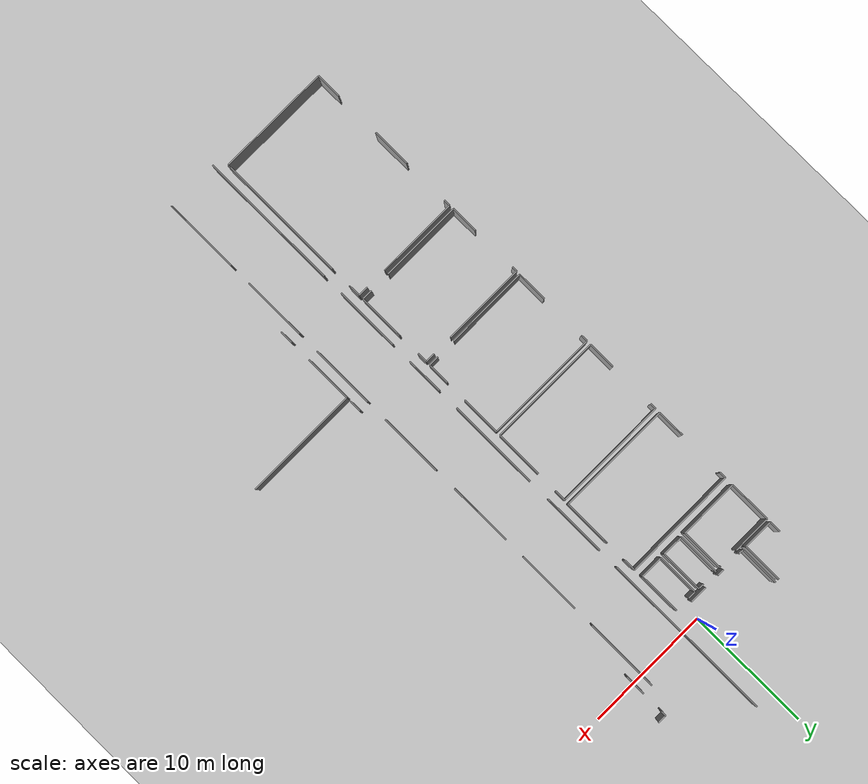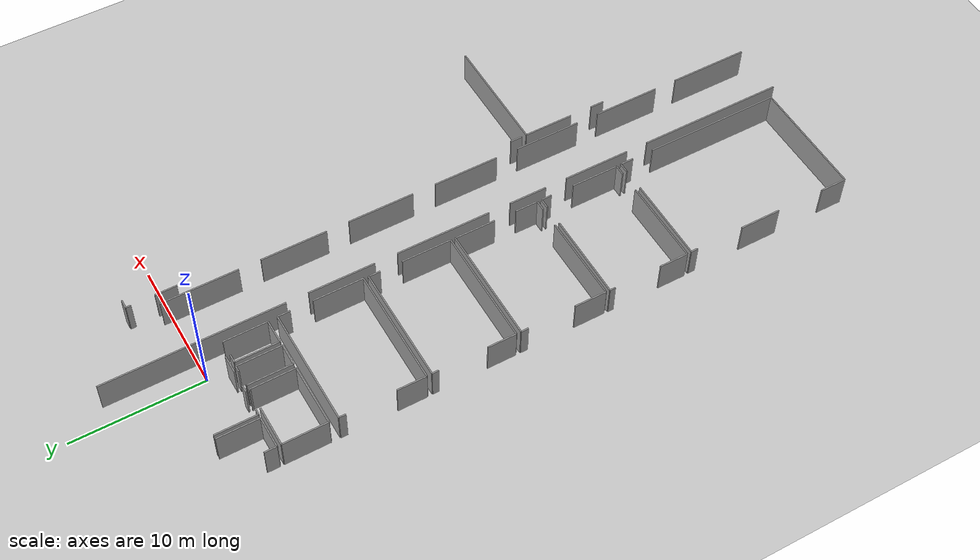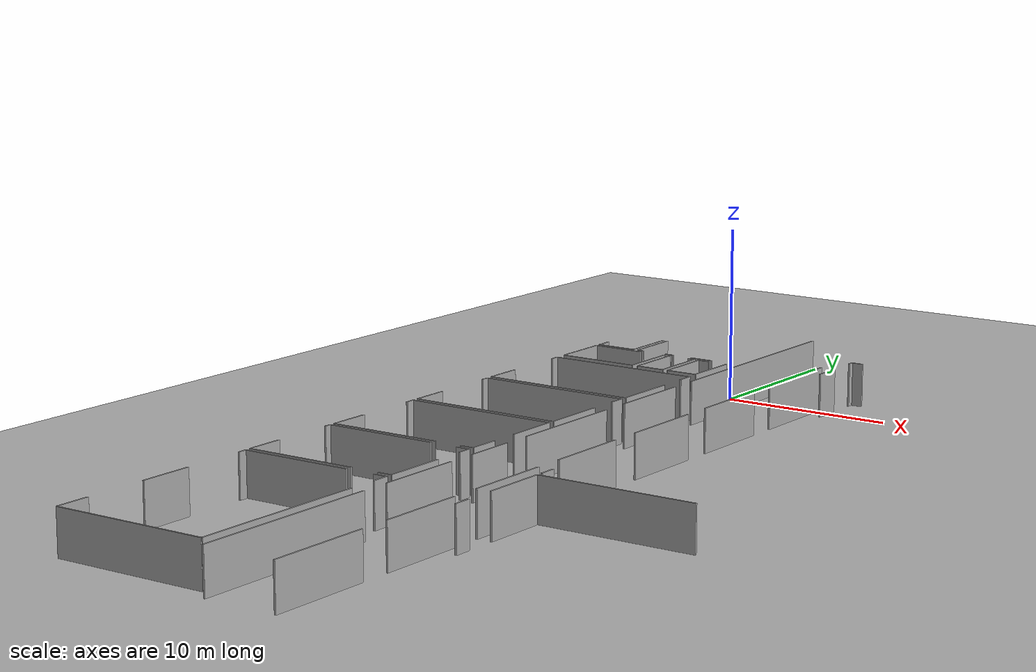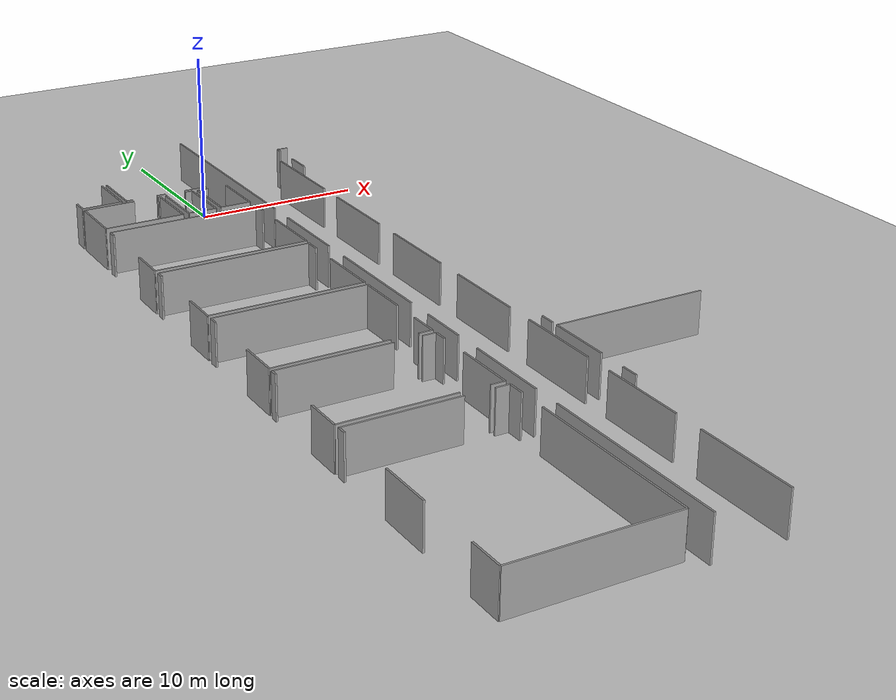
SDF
<sdf version="1.6">
 <world name="default">
  <model name="ground_plane">
   <static>1</static>
   <link name="link">
    <collision name="collision">
     <geometry><plane><normal>0 0 1</normal><size>100 100</size></plane></geometry>
     <surface><friction><ode><mu>100</mu><mu2>50</mu2></ode></friction></surface>
    </collision>
    <visual name="visual">
     <cast_shadows>0</cast_shadows>
     <geometry><plane><normal>0 0 1</normal><size>100 100</size></plane></geometry>
     <material>
      <script><uri>file://media/materials/scripts/gazebo.material</uri><name>Gazebo/Grey</name></script>
     </material>
    </visual>
   </link>
  </model>
  <model name="0510035740_A_40_1_103">
   <static>1</static>
   <link name="Wall_242">
    <collision name="Wall_242_Collision">
     <geometry><box><size>0.921048457199 0.1 2.5</size></box></geometry>
     <pose>0.4605242286 0 1.25 0 0 0</pose>
    </collision>
    <visual name="Wall_242_Visual">
     <pose>0.4605242286 0 1.25 0 0 0</pose>
     <geometry><box><size>0.921048457199 0.1 2.5</size></box></geometry>
     <material>
      <script><uri>file://media/materials/scripts/gazebo.material</uri><name>Gazebo/Grey</name></script>
      <ambient>1 1 1 1</ambient>
     </material>
    </visual>
    <pose>85.6668972037 -51.0680634252 0 0 0 1.57079632679</pose>
   </link>
   <link name="Wall_246">
    <collision name="Wall_246_Collision">
     <geometry><box><size>3.20729935344 0.1 2.5</size></box></geometry>
     <pose>1.60364967672 0 1.25 0 0 0</pose>
    </collision>
    <visual name="Wall_246_Visual">
     <pose>1.60364967672 0 1.25 0 0 0</pose>
     <geometry><box><size>3.20729935344 0.1 2.5</size></box></geometry>
     <material>
      <script><uri>file://media/materials/scripts/gazebo.material</uri><name>Gazebo/Grey</name></script>
      <ambient>1 1 1 1</ambient>
     </material>
    </visual>
    <pose>88.0919779446 -47.8607640717 0 0 0 -1.57079632679</pose>
   </link>
   <link name="Wall_247">
    <collision name="Wall_247_Collision">
     <geometry><box><size>2.42508074085 0.1 2.5</size></box></geometry>
     <pose>1.21254037042 0 1.25 0 0 0</pose>
    </collision>
    <visual name="Wall_247_Visual">
     <pose>1.21254037042 0 1.25 0 0 0</pose>
     <geometry><box><size>2.42508074085 0.1 2.5</size></box></geometry>
     <material>
      <script><uri>file://media/materials/scripts/gazebo.material</uri><name>Gazebo/Grey</name></script>
      <ambient>1 1 1 1</ambient>
     </material>
    </visual>
    <pose>88.0919779446 -51.0680634252 0 0 0 3.14159265359</pose>
   </link>
   <link name="Wall_248">
    <collision name="Wall_248_Collision">
     <geometry><box><size>3.18471095093 0.1 2.5</size></box></geometry>
     <pose>1.59235547547 0 1.25 0 0 0</pose>
    </collision>
    <visual name="Wall_248_Visual">
     <pose>1.59235547547 0 1.25 0 0 0</pose>
     <geometry><box><size>3.18471095093 0.1 2.5</size></box></geometry>
     <material>
      <script><uri>file://media/materials/scripts/gazebo.material</uri><name>Gazebo/Grey</name></script>
      <ambient>1 1 1 1</ambient>
     </material>
    </visual>
    <pose>88.3914646295 -51.0604493569 0 0 0 1.57079632679</pose>
   </link>
   <link name="Wall_255">
    <collision name="Wall_255_Collision">
     <geometry><box><size>1.39286688705 0.1 2.5</size></box></geometry>
     <pose>0.696433443526 0 1.25 0 0 0</pose>
    </collision>
    <visual name="Wall_255_Visual">
     <pose>0.696433443526 0 1.25 0 0 0</pose>
     <geometry><box><size>1.39286688705 0.1 2.5</size></box></geometry>
     <material>
      <script><uri>file://media/materials/scripts/gazebo.material</uri><name>Gazebo/Grey</name></script>
      <ambient>1 1 1 1</ambient>
     </material>
    </visual>
    <pose>93.4908599456 -51.0827839572 0 0 0 3.14159265359</pose>
   </link>
   <link name="Wall_256">
    <collision name="Wall_256_Collision">
     <geometry><box><size>0.555065576163 0.1 2.5</size></box></geometry>
     <pose>0.277532788081 0 1.25 0 0 0</pose>
    </collision>
    <visual name="Wall_256_Visual">
     <pose>0.277532788081 0 1.25 0 0 0</pose>
     <geometry><box><size>0.555065576163 0.1 2.5</size></box></geometry>
     <material>
      <script><uri>file://media/materials/scripts/gazebo.material</uri><name>Gazebo/Grey</name></script>
      <ambient>1 1 1 1</ambient>
     </material>
    </visual>
    <pose>90.8782193232 -51.0827839572 0 0 0 3.14159265359</pose>
   </link>
   <link name="Wall_257">
    <collision name="Wall_257_Collision">
     <geometry><box><size>0.391239726732 0.1 2.5</size></box></geometry>
     <pose>0.195619863366 0 1.25 0 0 0</pose>
    </collision>
    <visual name="Wall_257_Visual">
     <pose>0.195619863366 0 1.25 0 0 0</pose>
     <geometry><box><size>0.391239726732 0.1 2.5</size></box></geometry>
     <material>
      <script><uri>file://media/materials/scripts/gazebo.material</uri><name>Gazebo/Grey</name></script>
      <ambient>1 1 1 1</ambient>
     </material>
    </visual>
    <pose>88.7820663312 -51.0827839572 0 0 0 3.08447486225</pose>
   </link>
   <link name="Wall_258">
    <collision name="Wall_258_Collision">
     <geometry><box><size>3.3816615166 0.1 2.5</size></box></geometry>
     <pose>1.6908307583 0 1.25 0 0 0</pose>
    </collision>
    <visual name="Wall_258_Visual">
     <pose>1.6908307583 0 1.25 0 0 0</pose>
     <geometry><box><size>3.3816615166 0.1 2.5</size></box></geometry>
     <material>
      <script><uri>file://media/materials/scripts/gazebo.material</uri><name>Gazebo/Grey</name></script>
      <ambient>1 1 1 1</ambient>
     </material>
    </visual>
    <pose>85.6668972037 -54.7527648585 0 0 0 1.57079632679</pose>
   </link>
   <link name="Wall_259">
    <collision name="Wall_259_Collision">
     <geometry><box><size>3.09156551588 0.1 2.5</size></box></geometry>
     <pose>1.54578275794 0 1.25 0 0 0</pose>
    </collision>
    <visual name="Wall_259_Visual">
     <pose>1.54578275794 0 1.25 0 0 0</pose>
     <geometry><box><size>3.09156551588 0.1 2.5</size></box></geometry>
     <material>
      <script><uri>file://media/materials/scripts/gazebo.material</uri><name>Gazebo/Grey</name></script>
      <ambient>1 1 1 1</ambient>
     </material>
    </visual>
    <pose>85.6668972037 -51.3711033419 0 0 0 0.0</pose>
   </link>
   <link name="Wall_260">
    <collision name="Wall_260_Collision">
     <geometry><box><size>0.115987639829 0.1 2.5</size></box></geometry>
     <pose>0.0579938199146 0 1.25 0 0 0</pose>
    </collision>
    <visual name="Wall_260_Visual">
     <pose>0.0579938199146 0 1.25 0 0 0</pose>
     <geometry><box><size>0.115987639829 0.1 2.5</size></box></geometry>
     <material>
      <script><uri>file://media/materials/scripts/gazebo.material</uri><name>Gazebo/Grey</name></script>
      <ambient>1 1 1 1</ambient>
     </material>
    </visual>
    <pose>90.2985349264 -51.3711033419 0 0 0 0.0</pose>
   </link>
   <link name="Wall_261">
    <collision name="Wall_261_Collision">
     <geometry><box><size>3.37785448247 0.1 2.5</size></box></geometry>
     <pose>1.68892724123 0 1.25 0 0 0</pose>
    </collision>
    <visual name="Wall_261_Visual">
     <pose>1.68892724123 0 1.25 0 0 0</pose>
     <geometry><box><size>3.37785448247 0.1 2.5</size></box></geometry>
     <material>
      <script><uri>file://media/materials/scripts/gazebo.material</uri><name>Gazebo/Grey</name></script>
      <ambient>1 1 1 1</ambient>
     </material>
    </visual>
    <pose>90.4145225662 -51.3711033419 0 0 0 -1.57079632679</pose>
   </link>
   <link name="Wall_262">
    <collision name="Wall_262_Collision">
     <geometry><box><size>4.74762688886 0.1 2.5</size></box></geometry>
     <pose>2.37381344443 0 1.25 0 0 0</pose>
    </collision>
    <visual name="Wall_262_Visual">
     <pose>2.37381344443 0 1.25 0 0 0</pose>
     <geometry><box><size>4.74762688886 0.1 2.5</size></box></geometry>
     <material>
      <script><uri>file://media/materials/scripts/gazebo.material</uri><name>Gazebo/Grey</name></script>
      <ambient>1 1 1 1</ambient>
     </material>
    </visual>
    <pose>90.4145225662 -54.7489578244 0 0 0 -3.14079077201</pose>
   </link>
   <link name="Wall_263">
    <collision name="Wall_263_Collision">
     <geometry><box><size>3.38445334162 0.1 2.5</size></box></geometry>
     <pose>1.69222667081 0 1.25 0 0 0</pose>
    </collision>
    <visual name="Wall_263_Visual">
     <pose>1.69222667081 0 1.25 0 0 0</pose>
     <geometry><box><size>3.38445334162 0.1 2.5</size></box></geometry>
     <material>
      <script><uri>file://media/materials/scripts/gazebo.material</uri><name>Gazebo/Grey</name></script>
      <ambient>1 1 1 1</ambient>
     </material>
    </visual>
    <pose>90.7914189451 -54.7253542128 0 0 0 1.57079632679</pose>
   </link>
   <link name="Wall_264">
    <collision name="Wall_264_Collision">
     <geometry><box><size>0.0756330780505 0.1 2.5</size></box></geometry>
     <pose>0.0378165390253 0 1.25 0 0 0</pose>
    </collision>
    <visual name="Wall_264_Visual">
     <pose>0.0378165390253 0 1.25 0 0 0</pose>
     <geometry><box><size>0.0756330780505 0.1 2.5</size></box></geometry>
     <material>
      <script><uri>file://media/materials/scripts/gazebo.material</uri><name>Gazebo/Grey</name></script>
      <ambient>1 1 1 1</ambient>
     </material>
    </visual>
    <pose>90.7914189451 -51.3409008712 0 0 0 0.0</pose>
   </link>
   <link name="Wall_265">
    <collision name="Wall_265_Collision">
     <geometry><box><size>0.449737631898 0.1 2.5</size></box></geometry>
     <pose>0.224868815949 0 1.25 0 0 0</pose>
    </collision>
    <visual name="Wall_265_Visual">
     <pose>0.224868815949 0 1.25 0 0 0</pose>
     <geometry><box><size>0.449737631898 0.1 2.5</size></box></geometry>
     <material>
      <script><uri>file://media/materials/scripts/gazebo.material</uri><name>Gazebo/Grey</name></script>
      <ambient>1 1 1 1</ambient>
     </material>
    </visual>
    <pose>92.0299740487 -51.3409008712 0 0 0 0.0</pose>
   </link>
   <link name="Wall_266">
    <collision name="Wall_266_Collision">
     <geometry><box><size>3.41668623059 0.1 2.5</size></box></geometry>
     <pose>1.7083431153 0 1.25 0 0 0</pose>
    </collision>
    <visual name="Wall_266_Visual">
     <pose>1.7083431153 0 1.25 0 0 0</pose>
     <geometry><box><size>3.41668623059 0.1 2.5</size></box></geometry>
     <material>
      <script><uri>file://media/materials/scripts/gazebo.material</uri><name>Gazebo/Grey</name></script>
      <ambient>1 1 1 1</ambient>
     </material>
    </visual>
    <pose>92.4797116806 -51.3409008712 0 0 0 -1.57079632679</pose>
   </link>
   <link name="Wall_267">
    <collision name="Wall_267_Collision">
     <geometry><box><size>1.68860040271 0.1 2.5</size></box></geometry>
     <pose>0.844300201354 0 1.25 0 0 0</pose>
    </collision>
    <visual name="Wall_267_Visual">
     <pose>0.844300201354 0 1.25 0 0 0</pose>
     <geometry><box><size>1.68860040271 0.1 2.5</size></box></geometry>
     <material>
      <script><uri>file://media/materials/scripts/gazebo.material</uri><name>Gazebo/Grey</name></script>
      <ambient>1 1 1 1</ambient>
     </material>
    </visual>
    <pose>92.4797116806 -54.7575871018 0 0 0 3.12250297038</pose>
   </link>
   <link name="Wall_268">
    <collision name="Wall_268_Collision">
     <geometry><box><size>3.32988585243 0.1 2.5</size></box></geometry>
     <pose>1.66494292621 0 1.25 0 0 0</pose>
    </collision>
    <visual name="Wall_268_Visual">
     <pose>1.66494292621 0 1.25 0 0 0</pose>
     <geometry><box><size>3.32988585243 0.1 2.5</size></box></geometry>
     <material>
      <script><uri>file://media/materials/scripts/gazebo.material</uri><name>Gazebo/Grey</name></script>
      <ambient>1 1 1 1</ambient>
     </material>
    </visual>
    <pose>92.8208219387 -54.7304302583 0 0 0 1.57079632679</pose>
   </link>
   <link name="Wall_269">
    <collision name="Wall_269_Collision">
     <geometry><box><size>0.648972418038 0.1 2.5</size></box></geometry>
     <pose>0.324486209019 0 1.25 0 0 0</pose>
    </collision>
    <visual name="Wall_269_Visual">
     <pose>0.324486209019 0 1.25 0 0 0</pose>
     <geometry><box><size>0.648972418038 0.1 2.5</size></box></geometry>
     <material>
      <script><uri>file://media/materials/scripts/gazebo.material</uri><name>Gazebo/Grey</name></script>
      <ambient>1 1 1 1</ambient>
     </material>
    </visual>
    <pose>92.8208219387 -51.4005444059 0 0 0 0.0</pose>
   </link>
   <link name="Wall_270">
    <collision name="Wall_270_Collision">
     <geometry><box><size>3.3270940274 0.1 2.5</size></box></geometry>
     <pose>1.6635470137 0 1.25 0 0 0</pose>
    </collision>
    <visual name="Wall_270_Visual">
     <pose>1.6635470137 0 1.25 0 0 0</pose>
     <geometry><box><size>3.3270940274 0.1 2.5</size></box></geometry>
     <material>
      <script><uri>file://media/materials/scripts/gazebo.material</uri><name>Gazebo/Grey</name></script>
      <ambient>1 1 1 1</ambient>
     </material>
    </visual>
    <pose>94.6664720849 -51.4005444059 0 0 0 -1.57079632679</pose>
   </link>
   <link name="Wall_271">
    <collision name="Wall_271_Collision">
     <geometry><box><size>1.84565225778 0.1 2.5</size></box></geometry>
     <pose>0.922826128891 0 1.25 0 0 0</pose>
    </collision>
    <visual name="Wall_271_Visual">
     <pose>0.922826128891 0 1.25 0 0 0</pose>
     <geometry><box><size>1.84565225778 0.1 2.5</size></box></geometry>
     <material>
      <script><uri>file://media/materials/scripts/gazebo.material</uri><name>Gazebo/Grey</name></script>
      <ambient>1 1 1 1</ambient>
     </material>
    </visual>
    <pose>94.6664720849 -54.7276384333 0 0 0 -3.14008000348</pose>
   </link>
   <link name="Wall_272">
    <collision name="Wall_272_Collision">
     <geometry><box><size>1.63118722359 0.1 2.5</size></box></geometry>
     <pose>0.815593611797 0 1.25 0 0 0</pose>
    </collision>
    <visual name="Wall_272_Visual">
     <pose>0.815593611797 0 1.25 0 0 0</pose>
     <geometry><box><size>1.63118722359 0.1 2.5</size></box></geometry>
     <material>
      <script><uri>file://media/materials/scripts/gazebo.material</uri><name>Gazebo/Grey</name></script>
      <ambient>1 1 1 1</ambient>
     </material>
    </visual>
    <pose>100.381084116 -50.6028438545 0 0 0 1.57079632679</pose>
   </link>
   <link name="Wall_273">
    <collision name="Wall_273_Collision">
     <geometry><box><size>0.38374904031 0.1 2.5</size></box></geometry>
     <pose>0.191874520155 0 1.25 0 0 0</pose>
    </collision>
    <visual name="Wall_273_Visual">
     <pose>0.191874520155 0 1.25 0 0 0</pose>
     <geometry><box><size>0.38374904031 0.1 2.5</size></box></geometry>
     <material>
      <script><uri>file://media/materials/scripts/gazebo.material</uri><name>Gazebo/Grey</name></script>
      <ambient>1 1 1 1</ambient>
     </material>
    </visual>
    <pose>100.381084116 -47.244278345 0 0 0 1.57079632679</pose>
   </link>
   <link name="Wall_274">
    <collision name="Wall_274_Collision">
     <geometry><box><size>0.671560820543 0.1 2.5</size></box></geometry>
     <pose>0.335780410271 0 1.25 0 0 0</pose>
    </collision>
    <visual name="Wall_274_Visual">
     <pose>0.335780410271 0 1.25 0 0 0</pose>
     <geometry><box><size>0.671560820543 0.1 2.5</size></box></geometry>
     <material>
      <script><uri>file://media/materials/scripts/gazebo.material</uri><name>Gazebo/Grey</name></script>
      <ambient>1 1 1 1</ambient>
     </material>
    </visual>
    <pose>100.381084116 -46.8605293046 0 0 0 0.0</pose>
   </link>
   <link name="Wall_295">
    <collision name="Wall_295_Collision">
     <geometry><box><size>11.211715513 0.1 2.5</size></box></geometry>
     <pose>5.60585775651 0 1.25 0 0 0</pose>
    </collision>
    <visual name="Wall_295_Visual">
     <pose>5.60585775651 0 1.25 0 0 0</pose>
     <geometry><box><size>11.211715513 0.1 2.5</size></box></geometry>
     <material>
      <script><uri>file://media/materials/scripts/gazebo.material</uri><name>Gazebo/Grey</name></script>
      <ambient>1 1 1 1</ambient>
     </material>
    </visual>
    <pose>95.4588427885 -96.582933066 0 0 0 1.57079632679</pose>
   </link>
   <link name="Wall_296">
    <collision name="Wall_296_Collision">
     <geometry><box><size>5.12274512541 0.1 2.5</size></box></geometry>
     <pose>2.56137256271 0 1.25 0 0 0</pose>
    </collision>
    <visual name="Wall_296_Visual">
     <pose>2.56137256271 0 1.25 0 0 0</pose>
     <geometry><box><size>5.12274512541 0.1 2.5</size></box></geometry>
     <material>
      <script><uri>file://media/materials/scripts/gazebo.material</uri><name>Gazebo/Grey</name></script>
      <ambient>1 1 1 1</ambient>
     </material>
    </visual>
    <pose>95.4588427885 -83.6869856538 0 0 0 1.57079632679</pose>
   </link>
   <link name="Wall_297">
    <collision name="Wall_297_Collision">
     <geometry><box><size>2.93116247787 0.1 2.5</size></box></geometry>
     <pose>1.46558123894 0 1.25 0 0 0</pose>
    </collision>
    <visual name="Wall_297_Visual">
     <pose>1.46558123894 0 1.25 0 0 0</pose>
     <geometry><box><size>2.93116247787 0.1 2.5</size></box></geometry>
     <material>
      <script><uri>file://media/materials/scripts/gazebo.material</uri><name>Gazebo/Grey</name></script>
      <ambient>1 1 1 1</ambient>
     </material>
    </visual>
    <pose>95.4588427885 -76.8546284017 0 0 0 1.57079632679</pose>
   </link>
   <link name="Wall_298">
    <collision name="Wall_298_Collision">
     <geometry><box><size>7.28031826805 0.1 2.5</size></box></geometry>
     <pose>3.64015913403 0 1.25 0 0 0</pose>
    </collision>
    <visual name="Wall_298_Visual">
     <pose>3.64015913403 0 1.25 0 0 0</pose>
     <geometry><box><size>7.28031826805 0.1 2.5</size></box></geometry>
     <material>
      <script><uri>file://media/materials/scripts/gazebo.material</uri><name>Gazebo/Grey</name></script>
      <ambient>1 1 1 1</ambient>
     </material>
    </visual>
    <pose>95.4588427885 -72.2255287019 0 0 0 1.57079632679</pose>
   </link>
   <link name="Wall_299">
    <collision name="Wall_299_Collision">
     <geometry><box><size>5.0795987386 0.1 2.5</size></box></geometry>
     <pose>2.5397993693 0 1.25 0 0 0</pose>
    </collision>
    <visual name="Wall_299_Visual">
     <pose>2.5397993693 0 1.25 0 0 0</pose>
     <geometry><box><size>5.0795987386 0.1 2.5</size></box></geometry>
     <material>
      <script><uri>file://media/materials/scripts/gazebo.material</uri><name>Gazebo/Grey</name></script>
      <ambient>1 1 1 1</ambient>
     </material>
    </visual>
    <pose>95.4588427885 -63.199558384 0 0 0 1.57079632679</pose>
   </link>
   <link name="Wall_300">
    <collision name="Wall_300_Collision">
     <geometry><box><size>13.6822268612 0.1 2.5</size></box></geometry>
     <pose>6.84111343058 0 1.25 0 0 0</pose>
    </collision>
    <visual name="Wall_300_Visual">
     <pose>6.84111343058 0 1.25 0 0 0</pose>
     <geometry><box><size>13.6822268612 0.1 2.5</size></box></geometry>
     <material>
      <script><uri>file://media/materials/scripts/gazebo.material</uri><name>Gazebo/Grey</name></script>
      <ambient>1 1 1 1</ambient>
     </material>
    </visual>
    <pose>95.4588427885 -56.447402651 0 0 0 1.57079632679</pose>
   </link>
   <link name="Wall_302">
    <collision name="Wall_302_Collision">
     <geometry><box><size>5.84278218054 0.1 2.5</size></box></geometry>
     <pose>2.92139109027 0 1.25 0 0 0</pose>
    </collision>
    <visual name="Wall_302_Visual">
     <pose>2.92139109027 0 1.25 0 0 0</pose>
     <geometry><box><size>5.84278218054 0.1 2.5</size></box></geometry>
     <material>
      <script><uri>file://media/materials/scripts/gazebo.material</uri><name>Gazebo/Grey</name></script>
      <ambient>1 1 1 1</ambient>
     </material>
    </visual>
    <pose>99.5567343261 -48.9917070107 0 0 0 -1.57079632679</pose>
   </link>
   <link name="Wall_303">
    <collision name="Wall_303_Collision">
     <geometry><box><size>5.06462440436 0.1 2.5</size></box></geometry>
     <pose>2.53231220218 0 1.25 0 0 0</pose>
    </collision>
    <visual name="Wall_303_Visual">
     <pose>2.53231220218 0 1.25 0 0 0</pose>
     <geometry><box><size>5.06462440436 0.1 2.5</size></box></geometry>
     <material>
      <script><uri>file://media/materials/scripts/gazebo.material</uri><name>Gazebo/Grey</name></script>
      <ambient>1 1 1 1</ambient>
     </material>
    </visual>
    <pose>99.5567343261 -56.5012087333 0 0 0 -1.57079632679</pose>
   </link>
   <link name="Wall_304">
    <collision name="Wall_304_Collision">
     <geometry><box><size>5.08670520231 0.1 2.5</size></box></geometry>
     <pose>2.54335260116 0 1.25 0 0 0</pose>
    </collision>
    <visual name="Wall_304_Visual">
     <pose>2.54335260116 0 1.25 0 0 0</pose>
     <geometry><box><size>5.08670520231 0.1 2.5</size></box></geometry>
     <material>
      <script><uri>file://media/materials/scripts/gazebo.material</uri><name>Gazebo/Grey</name></script>
      <ambient>1 1 1 1</ambient>
     </material>
    </visual>
    <pose>99.5567343261 -63.2764604735 0 0 0 -1.57079632679</pose>
   </link>
   <link name="Wall_305">
    <collision name="Wall_305_Collision">
     <geometry><box><size>5.04102079275 0.1 2.5</size></box></geometry>
     <pose>2.52051039638 0 1.25 0 0 0</pose>
    </collision>
    <visual name="Wall_305_Visual">
     <pose>2.52051039638 0 1.25 0 0 0</pose>
     <geometry><box><size>5.04102079275 0.1 2.5</size></box></geometry>
     <material>
      <script><uri>file://media/materials/scripts/gazebo.material</uri><name>Gazebo/Grey</name></script>
      <ambient>1 1 1 1</ambient>
     </material>
    </visual>
    <pose>99.5567343261 -70.1585629715 0 0 0 -1.57079632679</pose>
   </link>
   <link name="Wall_306">
    <collision name="Wall_306_Collision">
     <geometry><box><size>5.06919284531 0.1 2.5</size></box></geometry>
     <pose>2.53459642266 0 1.25 0 0 0</pose>
    </collision>
    <visual name="Wall_306_Visual">
     <pose>2.53459642266 0 1.25 0 0 0</pose>
     <geometry><box><size>5.06919284531 0.1 2.5</size></box></geometry>
     <material>
      <script><uri>file://media/materials/scripts/gazebo.material</uri><name>Gazebo/Grey</name></script>
      <ambient>1 1 1 1</ambient>
     </material>
    </visual>
    <pose>99.5567343261 -76.9330533048 0 0 0 -1.57079632679</pose>
   </link>
   <link name="Wall_307">
    <collision name="Wall_307_Collision">
     <geometry><box><size>5.08568999321 0.1 2.5</size></box></geometry>
     <pose>2.54284499661 0 1.25 0 0 0</pose>
    </collision>
    <visual name="Wall_307_Visual">
     <pose>2.54284499661 0 1.25 0 0 0</pose>
     <geometry><box><size>5.08568999321 0.1 2.5</size></box></geometry>
     <material>
      <script><uri>file://media/materials/scripts/gazebo.material</uri><name>Gazebo/Grey</name></script>
      <ambient>1 1 1 1</ambient>
     </material>
    </visual>
    <pose>99.5567343261 -83.7265788088 0 0 0 -1.57079632679</pose>
   </link>
   <link name="Wall_308">
    <collision name="Wall_308_Collision">
     <geometry><box><size>6.01029168226 0.1 2.5</size></box></geometry>
     <pose>3.00514584113 0 1.25 0 0 0</pose>
    </collision>
    <visual name="Wall_308_Visual">
     <pose>3.00514584113 0 1.25 0 0 0</pose>
     <geometry><box><size>6.01029168226 0.1 2.5</size></box></geometry>
     <material>
      <script><uri>file://media/materials/scripts/gazebo.material</uri><name>Gazebo/Grey</name></script>
      <ambient>1 1 1 1</ambient>
     </material>
    </visual>
    <pose>99.5567343261 -90.5586822586 0 0 0 -1.57079632679</pose>
   </link>
   <link name="Wall_309">
    <collision name="Wall_309_Collision">
     <geometry><box><size>2.22609975698 0.1 2.5</size></box></geometry>
     <pose>1.11304987849 0 1.25 0 0 0</pose>
    </collision>
    <visual name="Wall_309_Visual">
     <pose>1.11304987849 0 1.25 0 0 0</pose>
     <geometry><box><size>2.22609975698 0.1 2.5</size></box></geometry>
     <material>
      <script><uri>file://media/materials/scripts/gazebo.material</uri><name>Gazebo/Grey</name></script>
      <ambient>1 1 1 1</ambient>
     </material>
    </visual>
    <pose>85.661567356 -61.9064357912 0 0 0 1.57079632679</pose>
   </link>
   <link name="Wall_310">
    <collision name="Wall_310_Collision">
     <geometry><box><size>0.52257888492 0.1 2.5</size></box></geometry>
     <pose>0.26128944246 0 1.25 0 0 0</pose>
    </collision>
    <visual name="Wall_310_Visual">
     <pose>0.26128944246 0 1.25 0 0 0</pose>
     <geometry><box><size>0.52257888492 0.1 2.5</size></box></geometry>
     <material>
      <script><uri>file://media/materials/scripts/gazebo.material</uri><name>Gazebo/Grey</name></script>
      <ambient>1 1 1 1</ambient>
     </material>
    </visual>
    <pose>85.661567356 -55.9730461984 0 0 0 1.57079632679</pose>
   </link>
   <link name="Wall_311">
    <collision name="Wall_311_Collision">
     <geometry><box><size>9.06277164775 0.1 2.5</size></box></geometry>
     <pose>4.53138582387 0 1.25 0 0 0</pose>
    </collision>
    <visual name="Wall_311_Visual">
     <pose>4.53138582387 0 1.25 0 0 0</pose>
     <geometry><box><size>9.06277164775 0.1 2.5</size></box></geometry>
     <material>
      <script><uri>file://media/materials/scripts/gazebo.material</uri><name>Gazebo/Grey</name></script>
      <ambient>1 1 1 1</ambient>
     </material>
    </visual>
    <pose>85.661567356 -55.4504673134 0 0 0 0.0</pose>
   </link>
   <link name="Wall_312">
    <collision name="Wall_312_Collision">
     <geometry><box><size>0.943383057429 0.1 2.5</size></box></geometry>
     <pose>0.471691528715 0 1.25 0 0 0</pose>
    </collision>
    <visual name="Wall_312_Visual">
     <pose>0.471691528715 0 1.25 0 0 0</pose>
     <geometry><box><size>0.943383057429 0.1 2.5</size></box></geometry>
     <material>
      <script><uri>file://media/materials/scripts/gazebo.material</uri><name>Gazebo/Grey</name></script>
      <ambient>1 1 1 1</ambient>
     </material>
    </visual>
    <pose>94.7243390037 -55.4504673134 0 0 0 -1.57079632679</pose>
   </link>
   <link name="Wall_313">
    <collision name="Wall_313_Collision">
     <geometry><box><size>3.84028222813 0.1 2.5</size></box></geometry>
     <pose>1.92014111407 0 1.25 0 0 0</pose>
    </collision>
    <visual name="Wall_313_Visual">
     <pose>1.92014111407 0 1.25 0 0 0</pose>
     <geometry><box><size>3.84028222813 0.1 2.5</size></box></geometry>
     <material>
      <script><uri>file://media/materials/scripts/gazebo.material</uri><name>Gazebo/Grey</name></script>
      <ambient>1 1 1 1</ambient>
     </material>
    </visual>
    <pose>94.7243390037 -58.1006706725 0 0 0 -1.57079632679</pose>
   </link>
   <link name="Wall_314">
    <collision name="Wall_314_Collision">
     <geometry><box><size>9.06283737965 0.1 2.5</size></box></geometry>
     <pose>4.53141868983 0 1.25 0 0 0</pose>
    </collision>
    <visual name="Wall_314_Visual">
     <pose>4.53141868983 0 1.25 0 0 0</pose>
     <geometry><box><size>9.06283737965 0.1 2.5</size></box></geometry>
     <material>
      <script><uri>file://media/materials/scripts/gazebo.material</uri><name>Gazebo/Grey</name></script>
      <ambient>1 1 1 1</ambient>
     </material>
    </visual>
    <pose>94.7243390037 -61.9409529006 0 0 0 3.13778400168</pose>
   </link>
   <link name="Wall_315">
    <collision name="Wall_315_Collision">
     <geometry><box><size>2.20274994765 0.1 2.5</size></box></geometry>
     <pose>1.10137497383 0 1.25 0 0 0</pose>
    </collision>
    <visual name="Wall_315_Visual">
     <pose>1.10137497383 0 1.25 0 0 0</pose>
     <geometry><box><size>2.20274994765 0.1 2.5</size></box></geometry>
     <material>
      <script><uri>file://media/materials/scripts/gazebo.material</uri><name>Gazebo/Grey</name></script>
      <ambient>1 1 1 1</ambient>
     </material>
    </visual>
    <pose>85.6722270515 -68.6999612952 0 0 0 1.57079632679</pose>
   </link>
   <link name="Wall_316">
    <collision name="Wall_316_Collision">
     <geometry><box><size>0.493391623256 0.1 2.5</size></box></geometry>
     <pose>0.246695811628 0 1.25 0 0 0</pose>
    </collision>
    <visual name="Wall_316_Visual">
     <pose>0.246695811628 0 1.25 0 0 0</pose>
     <geometry><box><size>0.493391623256 0.1 2.5</size></box></geometry>
     <material>
      <script><uri>file://media/materials/scripts/gazebo.material</uri><name>Gazebo/Grey</name></script>
      <ambient>1 1 1 1</ambient>
     </material>
    </visual>
    <pose>85.6722270515 -62.7932209412 0 0 0 1.57079632679</pose>
   </link>
   <link name="Wall_317">
    <collision name="Wall_317_Collision">
     <geometry><box><size>9.0087117631 0.1 2.5</size></box></geometry>
     <pose>4.50435588155 0 1.25 0 0 0</pose>
    </collision>
    <visual name="Wall_317_Visual">
     <pose>4.50435588155 0 1.25 0 0 0</pose>
     <geometry><box><size>9.0087117631 0.1 2.5</size></box></geometry>
     <material>
      <script><uri>file://media/materials/scripts/gazebo.material</uri><name>Gazebo/Grey</name></script>
      <ambient>1 1 1 1</ambient>
     </material>
    </visual>
    <pose>85.6722270515 -62.299829318 0 0 0 0.0</pose>
   </link>
   <link name="Wall_318">
    <collision name="Wall_318_Collision">
     <geometry><box><size>0.895668229666 0.1 2.5</size></box></geometry>
     <pose>0.447834114833 0 1.25 0 0 0</pose>
    </collision>
    <visual name="Wall_318_Visual">
     <pose>0.447834114833 0 1.25 0 0 0</pose>
     <geometry><box><size>0.895668229666 0.1 2.5</size></box></geometry>
     <material>
      <script><uri>file://media/materials/scripts/gazebo.material</uri><name>Gazebo/Grey</name></script>
      <ambient>1 1 1 1</ambient>
     </material>
    </visual>
    <pose>94.6809388146 -62.299829318 0 0 0 -1.57079632679</pose>
   </link>
   <link name="Wall_319">
    <collision name="Wall_319_Collision">
     <geometry><box><size>3.80931835054 0.1 2.5</size></box></geometry>
     <pose>1.90465917527 0 1.25 0 0 0</pose>
    </collision>
    <visual name="Wall_319_Visual">
     <pose>1.90465917527 0 1.25 0 0 0</pose>
     <geometry><box><size>3.80931835054 0.1 2.5</size></box></geometry>
     <material>
      <script><uri>file://media/materials/scripts/gazebo.material</uri><name>Gazebo/Grey</name></script>
      <ambient>1 1 1 1</ambient>
     </material>
    </visual>
    <pose>94.6809388146 -64.9073938948 0 0 0 -1.57079632679</pose>
   </link>
   <link name="Wall_320">
    <collision name="Wall_320_Collision">
     <geometry><box><size>9.00872733659 0.1 2.5</size></box></geometry>
     <pose>4.50436366829 0 1.25 0 0 0</pose>
    </collision>
    <visual name="Wall_320_Visual">
     <pose>4.50436366829 0 1.25 0 0 0</pose>
     <geometry><box><size>9.00872733659 0.1 2.5</size></box></geometry>
     <material>
      <script><uri>file://media/materials/scripts/gazebo.material</uri><name>Gazebo/Grey</name></script>
      <ambient>1 1 1 1</ambient>
     </material>
    </visual>
    <pose>94.6809388146 -68.7167122453 0 0 0 3.13973323891</pose>
   </link>
   <link name="Wall_321">
    <collision name="Wall_321_Collision">
     <geometry><box><size>2.45299899114 0.1 2.5</size></box></geometry>
     <pose>1.22649949557 0 1.25 0 0 0</pose>
    </collision>
    <visual name="Wall_321_Visual">
     <pose>1.22649949557 0 1.25 0 0 0</pose>
     <geometry><box><size>2.45299899114 0.1 2.5</size></box></geometry>
     <material>
      <script><uri>file://media/materials/scripts/gazebo.material</uri><name>Gazebo/Grey</name></script>
      <ambient>1 1 1 1</ambient>
     </material>
    </visual>
    <pose>85.6722270515 -75.7422130289 0 0 0 1.57079632679</pose>
   </link>
   <link name="Wall_322">
    <collision name="Wall_322_Collision">
     <geometry><box><size>0.559634017119 0.1 2.5</size></box></geometry>
     <pose>0.279817008559 0 1.25 0 0 0</pose>
    </collision>
    <visual name="Wall_322_Visual">
     <pose>0.279817008559 0 1.25 0 0 0</pose>
     <geometry><box><size>0.559634017119 0.1 2.5</size></box></geometry>
     <material>
      <script><uri>file://media/materials/scripts/gazebo.material</uri><name>Gazebo/Grey</name></script>
      <ambient>1 1 1 1</ambient>
     </material>
    </visual>
    <pose>85.6722270515 -69.6255781933 0 0 0 1.57079632679</pose>
   </link>
   <link name="Wall_323">
    <collision name="Wall_323_Collision">
     <geometry><box><size>8.99170701065 0.1 2.5</size></box></geometry>
     <pose>4.49585350533 0 1.25 0 0 0</pose>
    </collision>
    <visual name="Wall_323_Visual">
     <pose>4.49585350533 0 1.25 0 0 0</pose>
     <geometry><box><size>8.99170701065 0.1 2.5</size></box></geometry>
     <material>
      <script><uri>file://media/materials/scripts/gazebo.material</uri><name>Gazebo/Grey</name></script>
      <ambient>1 1 1 1</ambient>
     </material>
    </visual>
    <pose>85.6722270515 -69.0659441762 0 0 0 0.0</pose>
   </link>
   <link name="Wall_324">
    <collision name="Wall_324_Collision">
     <geometry><box><size>3.15070144604 0.1 2.5</size></box></geometry>
     <pose>1.57535072302 0 1.25 0 0 0</pose>
    </collision>
    <visual name="Wall_324_Visual">
     <pose>1.57535072302 0 1.25 0 0 0</pose>
     <geometry><box><size>3.15070144604 0.1 2.5</size></box></geometry>
     <material>
      <script><uri>file://media/materials/scripts/gazebo.material</uri><name>Gazebo/Grey</name></script>
      <ambient>1 1 1 1</ambient>
     </material>
    </visual>
    <pose>94.6639340622 -69.0659441762 0 0 0 -1.57079632679</pose>
   </link>
   <link name="Wall_325">
    <collision name="Wall_325_Collision">
     <geometry><box><size>1.76646383635 0.1 2.5</size></box></geometry>
     <pose>0.883231918174 0 1.25 0 0 0</pose>
    </collision>
    <visual name="Wall_325_Visual">
     <pose>0.883231918174 0 1.25 0 0 0</pose>
     <geometry><box><size>1.76646383635 0.1 2.5</size></box></geometry>
     <material>
      <script><uri>file://media/materials/scripts/gazebo.material</uri><name>Gazebo/Grey</name></script>
      <ambient>1 1 1 1</ambient>
     </material>
    </visual>
    <pose>94.6639340622 -73.9328566081 0 0 0 -1.57079632679</pose>
   </link>
   <link name="Wall_326">
    <collision name="Wall_326_Collision">
     <geometry><box><size>0.794908726357 0.1 2.5</size></box></geometry>
     <pose>0.397454363178 0 1.25 0 0 0</pose>
    </collision>
    <visual name="Wall_326_Visual">
     <pose>0.397454363178 0 1.25 0 0 0</pose>
     <geometry><box><size>0.794908726357 0.1 2.5</size></box></geometry>
     <material>
      <script><uri>file://media/materials/scripts/gazebo.material</uri><name>Gazebo/Grey</name></script>
      <ambient>1 1 1 1</ambient>
     </material>
    </visual>
    <pose>94.6639340622 -75.6993204444 0 0 0 3.14159265359</pose>
   </link>
   <link name="Wall_327">
    <collision name="Wall_327_Collision">
     <geometry><box><size>6.60001374586 0.1 2.5</size></box></geometry>
     <pose>3.30000687293 0 1.25 0 0 0</pose>
    </collision>
    <visual name="Wall_327_Visual">
     <pose>3.30000687293 0 1.25 0 0 0</pose>
     <geometry><box><size>6.60001374586 0.1 2.5</size></box></geometry>
     <material>
      <script><uri>file://media/materials/scripts/gazebo.material</uri><name>Gazebo/Grey</name></script>
      <ambient>1 1 1 1</ambient>
     </material>
    </visual>
    <pose>92.2721014194 -75.6993204444 0 0 0 -3.13509374493</pose>
   </link>
   <link name="Wall_328">
    <collision name="Wall_328_Collision">
     <geometry><box><size>2.20274994765 0.1 2.5</size></box></geometry>
     <pose>1.10137497383 0 1.25 0 0 0</pose>
    </collision>
    <visual name="Wall_328_Visual">
     <pose>1.10137497383 0 1.25 0 0 0</pose>
     <geometry><box><size>2.20274994765 0.1 2.5</size></box></geometry>
     <material>
      <script><uri>file://media/materials/scripts/gazebo.material</uri><name>Gazebo/Grey</name></script>
      <ambient>1 1 1 1</ambient>
     </material>
    </visual>
    <pose>85.6557299036 -82.333965724 0 0 0 1.57079632679</pose>
   </link>
   <link name="Wall_329">
    <collision name="Wall_329_Collision">
     <geometry><box><size>0.434763297653 0.1 2.5</size></box></geometry>
     <pose>0.217381648826 0 1.25 0 0 0</pose>
    </collision>
    <visual name="Wall_329_Visual">
     <pose>0.217381648826 0 1.25 0 0 0</pose>
     <geometry><box><size>0.434763297653 0.1 2.5</size></box></geometry>
     <material>
      <script><uri>file://media/materials/scripts/gazebo.material</uri><name>Gazebo/Grey</name></script>
      <ambient>1 1 1 1</ambient>
     </material>
    </visual>
    <pose>85.6557299036 -76.4767168138 0 0 0 1.57079632679</pose>
   </link>
   <link name="Wall_330">
    <collision name="Wall_330_Collision">
     <geometry><box><size>6.60190478608 0.1 2.5</size></box></geometry>
     <pose>3.30095239304 0 1.25 0 0 0</pose>
    </collision>
    <visual name="Wall_330_Visual">
     <pose>3.30095239304 0 1.25 0 0 0</pose>
     <geometry><box><size>6.60190478608 0.1 2.5</size></box></geometry>
     <material>
      <script><uri>file://media/materials/scripts/gazebo.material</uri><name>Gazebo/Grey</name></script>
      <ambient>1 1 1 1</ambient>
     </material>
    </visual>
    <pose>85.6557299036 -76.0419535161 0 0 0 0.0</pose>
   </link>
   <link name="Wall_331">
    <collision name="Wall_331_Collision">
     <geometry><box><size>0.783741426242 0.1 2.5</size></box></geometry>
     <pose>0.391870713121 0 1.25 0 0 0</pose>
    </collision>
    <visual name="Wall_331_Visual">
     <pose>0.391870713121 0 1.25 0 0 0</pose>
     <geometry><box><size>0.783741426242 0.1 2.5</size></box></geometry>
     <material>
      <script><uri>file://media/materials/scripts/gazebo.material</uri><name>Gazebo/Grey</name></script>
      <ambient>1 1 1 1</ambient>
     </material>
    </visual>
    <pose>93.8827306587 -76.0419535161 0 0 0 0.0</pose>
   </link>
   <link name="Wall_332">
    <collision name="Wall_332_Collision">
     <geometry><box><size>0.792624505879 0.1 2.5</size></box></geometry>
     <pose>0.396312252939 0 1.25 0 0 0</pose>
    </collision>
    <visual name="Wall_332_Visual">
     <pose>0.396312252939 0 1.25 0 0 0</pose>
     <geometry><box><size>0.792624505879 0.1 2.5</size></box></geometry>
     <material>
      <script><uri>file://media/materials/scripts/gazebo.material</uri><name>Gazebo/Grey</name></script>
      <ambient>1 1 1 1</ambient>
     </material>
    </visual>
    <pose>94.6664720849 -76.0419535161 0 0 0 -1.57079632679</pose>
   </link>
   <link name="Wall_333">
    <collision name="Wall_333_Collision">
     <geometry><box><size>3.65297614893 0.1 2.5</size></box></geometry>
     <pose>1.82648807447 0 1.25 0 0 0</pose>
    </collision>
    <visual name="Wall_333_Visual">
     <pose>1.82648807447 0 1.25 0 0 0</pose>
     <geometry><box><size>3.65297614893 0.1 2.5</size></box></geometry>
     <material>
      <script><uri>file://media/materials/scripts/gazebo.material</uri><name>Gazebo/Grey</name></script>
      <ambient>1 1 1 1</ambient>
     </material>
    </visual>
    <pose>94.6664720849 -78.647741477 0 0 0 -1.57079632679</pose>
   </link>
   <link name="Wall_334">
    <collision name="Wall_334_Collision">
     <geometry><box><size>0.816989524311 0.1 2.5</size></box></geometry>
     <pose>0.408494762156 0 1.25 0 0 0</pose>
    </collision>
    <visual name="Wall_334_Visual">
     <pose>0.408494762156 0 1.25 0 0 0</pose>
     <geometry><box><size>0.816989524311 0.1 2.5</size></box></geometry>
     <material>
      <script><uri>file://media/materials/scripts/gazebo.material</uri><name>Gazebo/Grey</name></script>
      <ambient>1 1 1 1</ambient>
     </material>
    </visual>
    <pose>94.6664720849 -82.3007176259 0 0 0 3.14159265359</pose>
   </link>
   <link name="Wall_335">
    <collision name="Wall_335_Collision">
     <geometry><box><size>6.53168617739 0.1 2.5</size></box></geometry>
     <pose>3.26584308869 0 1.25 0 0 0</pose>
    </collision>
    <visual name="Wall_335_Visual">
     <pose>3.26584308869 0 1.25 0 0 0</pose>
     <geometry><box><size>6.53168617739 0.1 2.5</size></box></geometry>
     <material>
      <script><uri>file://media/materials/scripts/gazebo.material</uri><name>Gazebo/Grey</name></script>
      <ambient>1 1 1 1</ambient>
     </material>
    </visual>
    <pose>92.1873314594 -82.3007176259 0 0 0 -3.13650235367</pose>
   </link>
   <link name="Wall_336">
    <collision name="Wall_336_Collision">
     <geometry><box><size>2.03168721408 0.1 2.5</size></box></geometry>
     <pose>1.01584360704 0 1.25 0 0 0</pose>
    </collision>
    <visual name="Wall_336_Visual">
     <pose>1.01584360704 0 1.25 0 0 0</pose>
     <geometry><box><size>2.03168721408 0.1 2.5</size></box></geometry>
     <material>
      <script><uri>file://media/materials/scripts/gazebo.material</uri><name>Gazebo/Grey</name></script>
      <ambient>1 1 1 1</ambient>
     </material>
    </visual>
    <pose>85.6839019562 -95.8062981035 0 0 0 1.57079632679</pose>
   </link>
   <link name="Wall_337">
    <collision name="Wall_337_Collision">
     <geometry><box><size>3.13724992545 0.1 2.5</size></box></geometry>
     <pose>1.56862496272 0 1.25 0 0 0</pose>
    </collision>
    <visual name="Wall_337_Visual">
     <pose>1.56862496272 0 1.25 0 0 0</pose>
     <geometry><box><size>3.13724992545 0.1 2.5</size></box></geometry>
     <material>
      <script><uri>file://media/materials/scripts/gazebo.material</uri><name>Gazebo/Grey</name></script>
      <ambient>1 1 1 1</ambient>
     </material>
    </visual>
    <pose>85.6839019562 -90.0604683921 0 0 0 1.57079632679</pose>
   </link>
   <link name="Wall_338">
    <collision name="Wall_338_Collision">
     <geometry><box><size>0.543898276048 0.1 2.5</size></box></geometry>
     <pose>0.271949138024 0 1.25 0 0 0</pose>
    </collision>
    <visual name="Wall_338_Visual">
     <pose>0.271949138024 0 1.25 0 0 0</pose>
     <geometry><box><size>0.543898276048 0.1 2.5</size></box></geometry>
     <material>
      <script><uri>file://media/materials/scripts/gazebo.material</uri><name>Gazebo/Grey</name></script>
      <ambient>1 1 1 1</ambient>
     </material>
    </visual>
    <pose>85.6839019562 -83.2210046763 0 0 0 1.57079632679</pose>
   </link>
   <link name="Wall_339">
    <collision name="Wall_339_Collision">
     <geometry><box><size>6.49759205091 0.1 2.5</size></box></geometry>
     <pose>3.24879602546 0 1.25 0 0 0</pose>
    </collision>
    <visual name="Wall_339_Visual">
     <pose>3.24879602546 0 1.25 0 0 0</pose>
     <geometry><box><size>6.49759205091 0.1 2.5</size></box></geometry>
     <material>
      <script><uri>file://media/materials/scripts/gazebo.material</uri><name>Gazebo/Grey</name></script>
      <ambient>1 1 1 1</ambient>
     </material>
    </visual>
    <pose>85.6839019562 -82.6771064003 0 0 0 0.0</pose>
   </link>
   <link name="Wall_340">
    <collision name="Wall_340_Collision">
     <geometry><box><size>0.800999980965 0.1 2.5</size></box></geometry>
     <pose>0.400499990482 0 1.25 0 0 0</pose>
    </collision>
    <visual name="Wall_340_Visual">
     <pose>0.400499990482 0 1.25 0 0 0</pose>
     <geometry><box><size>0.800999980965 0.1 2.5</size></box></geometry>
     <material>
      <script><uri>file://media/materials/scripts/gazebo.material</uri><name>Gazebo/Grey</name></script>
      <ambient>1 1 1 1</ambient>
     </material>
    </visual>
    <pose>93.8842534723 -82.6771064003 0 0 0 0.0</pose>
   </link>
   <link name="Wall_341">
    <collision name="Wall_341_Collision">
     <geometry><box><size>1.00429560351 0.1 2.5</size></box></geometry>
     <pose>0.502147801755 0 1.25 0 0 0</pose>
    </collision>
    <visual name="Wall_341_Visual">
     <pose>0.502147801755 0 1.25 0 0 0</pose>
     <geometry><box><size>1.00429560351 0.1 2.5</size></box></geometry>
     <material>
      <script><uri>file://media/materials/scripts/gazebo.material</uri><name>Gazebo/Grey</name></script>
      <ambient>1 1 1 1</ambient>
     </material>
    </visual>
    <pose>94.6852534533 -82.6771064003 0 0 0 -1.57079632679</pose>
   </link>
   <link name="Wall_342">
    <collision name="Wall_342_Collision">
     <geometry><box><size>10.4482782688 0.1 2.5</size></box></geometry>
     <pose>5.22413913441 0 1.25 0 0 0</pose>
    </collision>
    <visual name="Wall_342_Visual">
     <pose>5.22413913441 0 1.25 0 0 0</pose>
     <geometry><box><size>10.4482782688 0.1 2.5</size></box></geometry>
     <material>
      <script><uri>file://media/materials/scripts/gazebo.material</uri><name>Gazebo/Grey</name></script>
      <ambient>1 1 1 1</ambient>
     </material>
    </visual>
    <pose>94.6852534533 -85.3580198346 0 0 0 -1.57079632679</pose>
   </link>
   <link name="Wall_343">
    <collision name="Wall_343_Collision">
     <geometry><box><size>9.00135149712 0.1 2.5</size></box></geometry>
     <pose>4.50067574856 0 1.25 0 0 0</pose>
    </collision>
    <visual name="Wall_343_Visual">
     <pose>4.50067574856 0 1.25 0 0 0</pose>
     <geometry><box><size>9.00135149712 0.1 2.5</size></box></geometry>
     <material>
      <script><uri>file://media/materials/scripts/gazebo.material</uri><name>Gazebo/Grey</name></script>
      <ambient>1 1 1 1</ambient>
     </material>
    </visual>
    <pose>94.6852534533 -95.8062981035 0 0 0 3.14159265359</pose>
   </link>
   <link name="Wall_351">
    <collision name="Wall_351_Collision">
     <geometry><box><size>1.04058932888 0.1 2.5</size></box></geometry>
     <pose>0.520294664442 0 1.25 0 0 0</pose>
    </collision>
    <visual name="Wall_351_Visual">
     <pose>0.520294664442 0 1.25 0 0 0</pose>
     <geometry><box><size>1.04058932888 0.1 2.5</size></box></geometry>
     <material>
      <script><uri>file://media/materials/scripts/gazebo.material</uri><name>Gazebo/Grey</name></script>
      <ambient>1 1 1 1</ambient>
     </material>
    </visual>
    <pose>100.384129744 -84.7389960851 0 0 0 1.57079632679</pose>
   </link>
   <link name="Wall_352">
    <collision name="Wall_352_Collision">
     <geometry><box><size>3.78749135486 0.1 2.5</size></box></geometry>
     <pose>1.89374567743 0 1.25 0 0 0</pose>
    </collision>
    <visual name="Wall_352_Visual">
     <pose>1.89374567743 0 1.25 0 0 0</pose>
     <geometry><box><size>3.78749135486 0.1 2.5</size></box></geometry>
     <material>
      <script><uri>file://media/materials/scripts/gazebo.material</uri><name>Gazebo/Grey</name></script>
      <ambient>1 1 1 1</ambient>
     </material>
    </visual>
    <pose>100.384129744 -81.9626529952 0 0 0 1.57079632679</pose>
   </link>
   <link name="Wall_353">
    <collision name="Wall_353_Collision">
     <geometry><box><size>9.04018324524 0.1 2.5</size></box></geometry>
     <pose>4.52009162262 0 1.25 0 0 0</pose>
    </collision>
    <visual name="Wall_353_Visual">
     <pose>4.52009162262 0 1.25 0 0 0</pose>
     <geometry><box><size>9.04018324524 0.1 2.5</size></box></geometry>
     <material>
      <script><uri>file://media/materials/scripts/gazebo.material</uri><name>Gazebo/Grey</name></script>
      <ambient>1 1 1 1</ambient>
     </material>
    </visual>
    <pose>100.384129744 -78.1751616403 0 0 0 0.0</pose>
   </link>
   <link name="Wall_357">
    <collision name="Wall_357_Collision">
     <geometry><box><size>0.934499977792 0.1 2.5</size></box></geometry>
     <pose>0.467249988896 0 1.25 0 0 0</pose>
    </collision>
    <visual name="Wall_357_Visual">
     <pose>0.467249988896 0 1.25 0 0 0</pose>
     <geometry><box><size>0.934499977792 0.1 2.5</size></box></geometry>
     <material>
      <script><uri>file://media/materials/scripts/gazebo.material</uri><name>Gazebo/Grey</name></script>
      <ambient>1 1 1 1</ambient>
     </material>
    </visual>
    <pose>100.390982405 -77.811716782 0 0 0 1.57079632679</pose>
   </link>
   <pose>-93.95 49.6557238758 0 0 0 0</pose>
  </model>
 </world>
</sdf>
